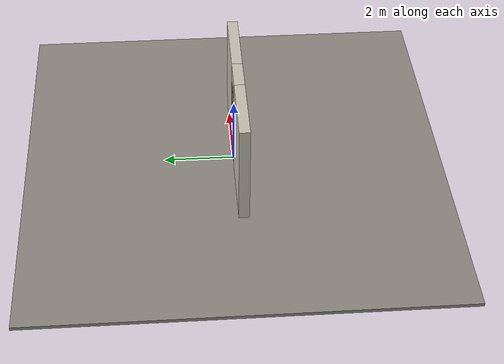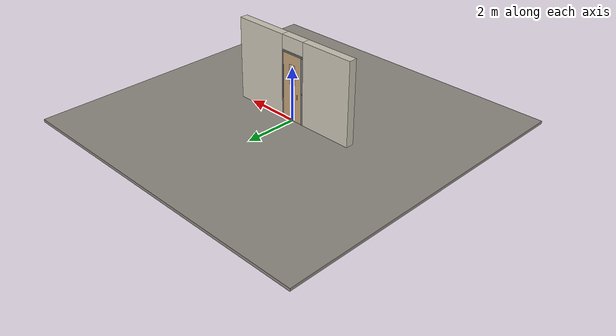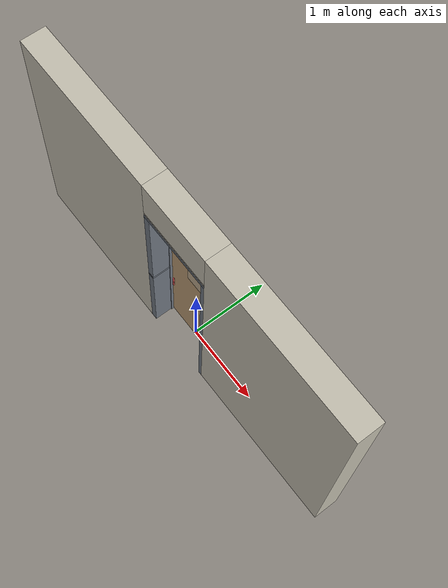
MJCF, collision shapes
<?xml version="1.0" ?>
<mujoco model="db0219_swing_single_minimal">
  <compiler angle="radian" meshdir="../../hardware" texturedir="../../textures" autolimits="true" inertiafromgeom="false"/>
  <option timestep="0.002" integrator="implicitfast" cone="elliptic" impratio="10" noslip_iterations="3">
    <flag multiccd="enable"/>
  </option>
  <size memory="16M"/>
  <default>
    <geom condim="4" solref="0.005 1" solimp="0.95 0.99 0.001"/>
    <joint solreflimit="0.005 1" solimplimit="0.95 0.99 0.001"/>
    <tendon solreflimit="0.005 1"/>
    <equality solref="0.002 1"/>
  </default>
  <visual>
    <headlight ambient="0.4 0.4 0.4" diffuse="0.7 0.7 0.7" specular="0.2 0.2 0.2"/>
    <quality shadowsize="4096"/>
    <map znear="0.01" zfar="60"/>
  </visual>
  <asset>
    <mesh name="pull_1e5d69a91a" file="pull_1e5d69a91a.obj"/>
    <material name="mat_floor" rgba="0.55 0.53 0.5 1" specular="0.2" shininess="0.15" reflectance="0"/>
    <material name="mat_wall" rgba="0.78 0.76 0.7 1" specular="0.2" shininess="0.1" reflectance="0"/>
    <material name="mat_leaf" rgba="0.754 0.624 0.463 1" specular="0.2" shininess="0.5" reflectance="0"/>
    <material name="mat_glass" rgba="0.85 0.92 0.95 0.25" specular="0.2" shininess="0.95" reflectance="0.1"/>
    <material name="mat_hinge" rgba="0.65 0.66 0.68 1" specular="0.74" shininess="0.5" reflectance="0.36"/>
    <material name="mat_op_stainless" rgba="0.75 0.76 0.77 1" specular="0.8" shininess="0.65" reflectance="0.4"/>
    <material name="mat_deadbolt" rgba="0.85 0.66 0.3 1" specular="0.8" shininess="0.75" reflectance="0.4"/>
    <material name="mat_frame" rgba="0.45 0.48 0.52 1" specular="0.32" shininess="0.6" reflectance="0.08"/>
    <material name="mat_closer" rgba="0.22 0.17 0.13 1" specular="0.8" shininess="0.6" reflectance="0.4"/>
    <material name="mat_kick" rgba="0.75 0.76 0.77 1" specular="0.8" shininess="0.65" reflectance="0.4"/>
    <material name="mat_wallreader" rgba="0.05 0.05 0.05 1" specular="0.38" shininess="0.3" reflectance="0.12"/>
    <texture name="skybox" type="skybox" builtin="gradient" rgb1="0.6 0.7 0.85" rgb2="0.9 0.92 0.95" width="256" height="256"/>
  </asset>
  <worldbody>
    <light name="sun" pos="1.5 -2.5 4" dir="-0.3 0.5 -0.8" directional="true" diffuse="0.8 0.8 0.8" specular="0.3 0.3 0.3" castshadow="true"/>
    <light name="fill" pos="-1.5 2.5 3" dir="0.3 -0.5 -0.7" directional="true" diffuse="0.35 0.35 0.4" castshadow="false"/>
    <camera name="robot_view" pos="0 -3.043813 2.043887" xyaxes="1 0 0 0 0.26963 0.962964" fovy="52"/>
    <camera name="far_view" pos="0 2.801813 2.043887" xyaxes="-1 0 0 0 -0.26963 0.962964" fovy="52"/>
    <camera name="iso" pos="-2.221337 -2.576163 2.511538" xyaxes="0.741536 -0.670913 0 0.242917 0.268487 0.932151" fovy="46"/>
    <camera name="detail_handle" pos="-0.1205 -0.882 1.296" xyaxes="0.97561 0.219512 0 -0.070934 0.315262 0.94635" fovy="38"/>
    <geom name="floor" type="box" size="6 6 0.05" pos="0 0 -0.05" material="mat_floor" group="0" contype="1" conaffinity="1" friction="0.8 0.005 0.0001" density="2400"/>
    <geom name="wall_left" type="box" size="1.00475 0.15 1.5255" pos="-1.49525 -0.121 1.5255" material="mat_wall" group="0" contype="1" conaffinity="1" friction="0.6 0.005 0.0001" density="800"/>
    <geom name="wall_right" type="box" size="1.01975 0.15 1.5255" pos="1.48025 -0.121 1.5255" material="mat_wall" group="0" contype="1" conaffinity="1" friction="0.6 0.005 0.0001" density="800"/>
    <geom name="wall_header" type="box" size="0.4755 0.15 0.26" pos="-0.015 -0.121 2.791" material="mat_wall" group="0" contype="1" conaffinity="1" friction="0.6 0.005 0.0001" density="800"/>
    <geom name="jamb_hinge" type="box" size="0.025 0.15 1.2255" pos="0.4355 -0.121 1.2255" material="mat_frame" group="0" contype="1" conaffinity="1" friction="0.6 0.005 0.0001" density="300"/>
    <geom name="strike_1156_wall_n" type="box" size="0.04 0.13075 0.0155" pos="-0.4505 -0.14025 1.156" material="mat_frame" group="0" contype="1" conaffinity="1" friction="0.6 0.005 0.0001" density="300"/>
    <geom name="strike_1156_wall_p" type="box" size="0.04 0.00975 0.0155" pos="-0.4505 0.01925 1.156" material="mat_frame" group="0" contype="1" conaffinity="1" friction="0.6 0.005 0.0001" density="300"/>
    <geom name="strike_1156_back" type="box" size="0.0253 0.0095 0.0155" pos="-0.4652 0 1.156" material="mat_frame" group="0" contype="1" conaffinity="1" friction="0.6 0.005 0.0001" density="300"/>
    <geom name="jamb_strike_0" type="box" size="0.04 0.15 0.57025" pos="-0.4505 -0.121 0.57025" material="mat_frame" group="0" contype="1" conaffinity="1" friction="0.6 0.005 0.0001" density="300"/>
    <geom name="jamb_strike_1" type="box" size="0.04 0.15 0.63975" pos="-0.4505 -0.121 1.81125" material="mat_frame" group="0" contype="1" conaffinity="1" friction="0.6 0.005 0.0001" density="300"/>
    <geom name="jamb_head" type="box" size="0.4755 0.15 0.025" pos="-0.015 -0.121 2.476" material="mat_frame" group="0" contype="1" conaffinity="1" friction="0.6 0.005 0.0001" density="300"/>
    <geom name="head_stud" type="box" size="0.4755 0.15 0.015" pos="-0.015 -0.121 2.516" material="mat_wall" group="0" contype="1" conaffinity="1" friction="0.6 0.005 0.0001" density="500"/>
    <geom name="stop_hinge" type="box" size="0.0055 0.016 1.2255" pos="0.405 -0.0385 1.2255" material="mat_frame" group="0" contype="1" conaffinity="1" friction="0.6 0.005 0.0001" density="300"/>
    <geom name="stop_strike" type="box" size="0.0055 0.016 1.2255" pos="-0.405 -0.0385 1.2255" material="mat_frame" group="0" contype="1" conaffinity="1" friction="0.6 0.005 0.0001" density="300"/>
    <geom name="stop_head" type="box" size="0.4105 0.016 0.0055" pos="0 -0.0385 2.4455" material="mat_frame" group="0" contype="1" conaffinity="1" friction="0.6 0.005 0.0001" density="300"/>
    <site name="approach_point" pos="0 -1.5 0" quat="1 0 0 0" size="0.05" rgba="0.2 0.9 0.2 0.5" group="4"/>
    <site name="goal_point" pos="0 1.5 0" quat="1 0 0 0" size="0.05" rgba="0.2 0.9 0.2 0.5" group="4"/>
    <site name="door_plane_center" pos="0 0 1.2255" quat="1 0 0 0" size="0.02" rgba="0.2 0.9 0.2 0.5" group="4"/>
    <body name="leaf" pos="0.4105 0 0">
      <inertial pos="-0.414302 0 1.224694" mass="71.81516" quat="0.49942 -0.49942 0.500579 0.500579" diaginertia="4.012136648 35.074872695 39.051328949"/>
      <joint name="leaf_hinge" type="hinge" axis="0 0 -1" pos="-0.003 0.029 0" limited="true" range="0 1.570796" damping="10.192359" frictionloss="0.913334" stiffness="12.363156" springref="-2.691869" armature="0.02"/>
      <geom name="leaf_slab" type="box" size="0.4065 0.022 1.219" pos="-0.4095 0 1.228" material="mat_leaf" group="0" contype="1" conaffinity="1" friction="0.4 0.005 0.0001" density="1"/>
      <geom name="leaf_glass_0" type="box" size="0.12195 0.0228 0.3657" pos="-0.4095 0 1.7156" material="mat_glass" group="1" contype="0" conaffinity="0" density="1"/>
      <geom name="leaf_pull_n" type="mesh" mesh="pull_1e5d69a91a" pos="-0.711 -0.022 1.016" quat="0 0 -0.707107 0.707107" material="mat_op_stainless" group="1" contype="0" conaffinity="0" density="3000"/>
      <geom name="leaf_pull_col_n" type="capsule" size="0.0095 0.08" pos="-0.711 -0.082 1.016" material="mat_op_stainless" group="3" contype="1" conaffinity="1" rgba="0.8 0.3 0.3 0.25" friction="0.7 0.01 0.0001" density="3000"/>
      <geom name="leaf_pull_p" type="mesh" mesh="pull_1e5d69a91a" pos="-0.711 0.022 1.016" quat="0 0 0.707107 0.707107" material="mat_op_stainless" group="1" contype="0" conaffinity="0" density="3000"/>
      <geom name="leaf_pull_col_p" type="capsule" size="0.0095 0.08" pos="-0.711 0.082 1.016" material="mat_op_stainless" group="3" contype="1" conaffinity="1" rgba="0.8 0.3 0.3 0.25" friction="0.7 0.01 0.0001" density="3000"/>
      <site name="leaf_pull_grip_n" pos="-0.711 -0.082 1.016" quat="1 0 0 0" size="0.012" rgba="0.2 0.9 0.2 0.5" group="4"/>
      <site name="leaf_pull_grip_p" pos="-0.711 0.082 1.016" quat="1 0 0 0" size="0.012" rgba="0.2 0.9 0.2 0.5" group="4"/>
      <site name="leaf_edge_mid" pos="-0.816 0 1.219" quat="1 0 0 0" size="0.02" rgba="0.2 0.9 0.2 0.5" group="4"/>
    </body>
  </worldbody>
  <sensor>
    <jointpos name="leaf_hinge_pos" joint="leaf_hinge"/>
    <jointvel name="leaf_hinge_vel" joint="leaf_hinge"/>
  </sensor>
</mujoco>
